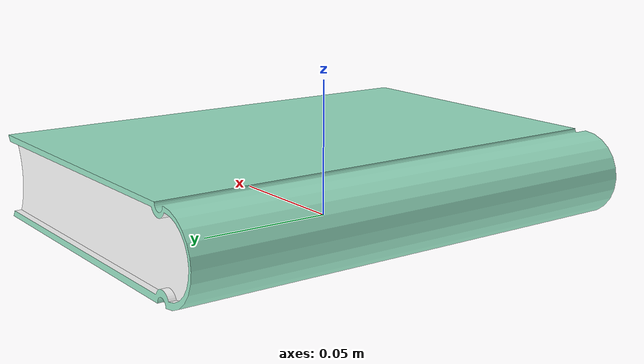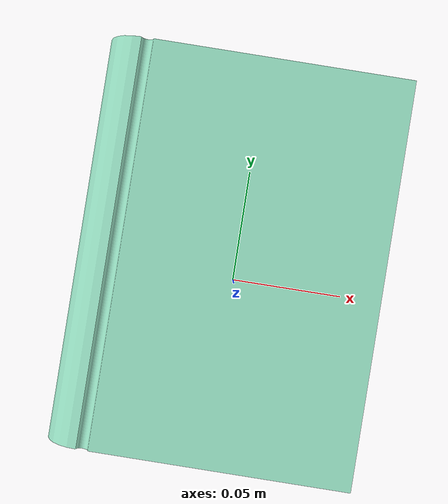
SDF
<?xml version='1.0'?>
<sdf version='1.6'>
  <model name='book_sky'>

    <link name='link_0'>
      <pose frame=''>0 0 0 0 -0 0</pose>
        <visual name='visual'>
        <pose frame=''>0 0 0 0 -0 0</pose>
        <geometry>
          <mesh>
            <uri>model://book_sky/meshes/book1_cover.dae</uri>
            <scale>1 1 1</scale>
          </mesh>
        </geometry>
        <material>
          <lighting>1</lighting>
          <ambient>0.606 0.898 0.780 1</ambient>
          <diffuse>0.606 0.898 0.780 1</diffuse>
          <specular>0.01 0.01 0.01 1</specular>
          <emissive>0 0 0 1</emissive>
          <shader type='vertex'>
            <normal_map>__default__</normal_map>
          </shader>
        </material>

        <cast_shadows>1</cast_shadows>
        <transparency>0</transparency>
      </visual>
      <collision name='collision'>
         <geometry>
          <mesh>
            <uri>model://book_sky/meshes/book1_cover.dae</uri>
            <scale>1 1 1</scale>
          </mesh>
        </geometry>

      </collision>
    </link>
    <link name='link_1'>
      <pose frame=''>0 0 0 0 -0 0</pose>
        <visual name='visual'>
        <pose frame=''>0 0 0 0 -0 0</pose>
        <geometry>
          <mesh>
            <uri>model://book_sky/meshes/book1_page.dae</uri>
            <scale>1 1 1</scale>
          </mesh>
        </geometry>
        <material>
          <lighting>1</lighting>
          <ambient>1 1 1 1</ambient>
          <diffuse>1 1 1 1</diffuse>
          <specular>0.01 0.01 0.01 1</specular>
          <emissive>0 0 0 1</emissive>
          <shader type='vertex'>
            <normal_map>__default__</normal_map>
          </shader>
        </material>
        <cast_shadows>1</cast_shadows>
        <transparency>0</transparency>
      </visual>
      <collision name='collision'>
        <laser_retro>0</laser_retro>
        <max_contacts>10</max_contacts>
        <pose frame=''>0 0 0 0 -0 0</pose>
        <geometry>
          <mesh>
            <uri>model://book_sky/meshes/book1_page.dae</uri>
            <scale>1 1 1</scale>
          </mesh>
        </geometry>
        </collision>
    </link>
    <static>1</static>
    <allow_auto_disable>1</allow_auto_disable>
  </model>
</sdf>
